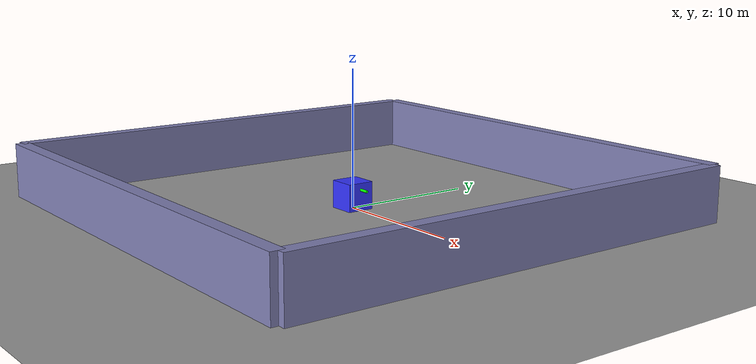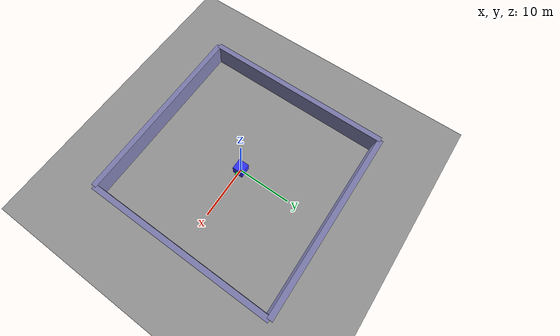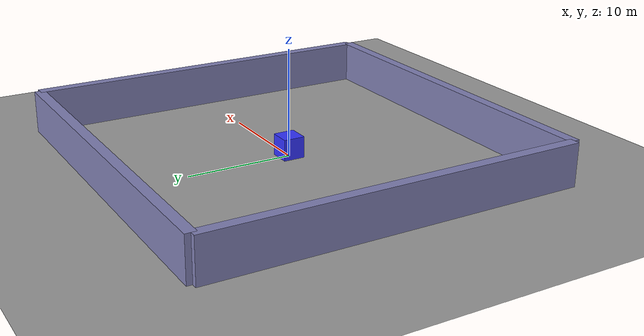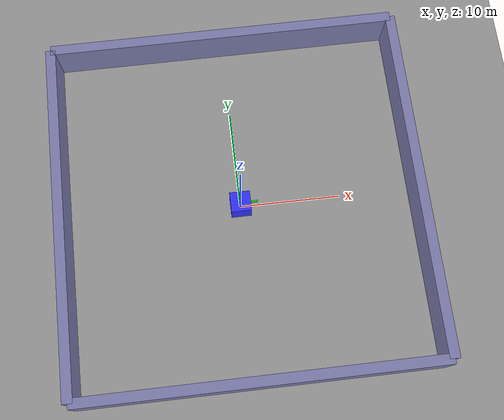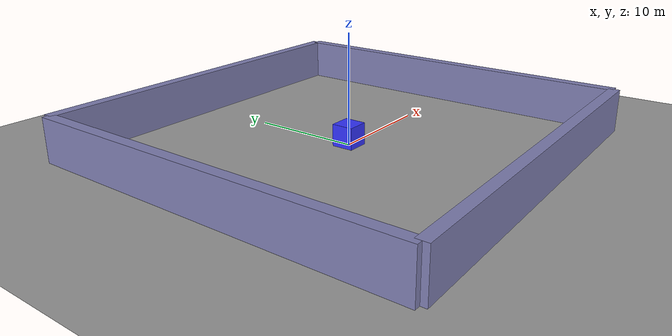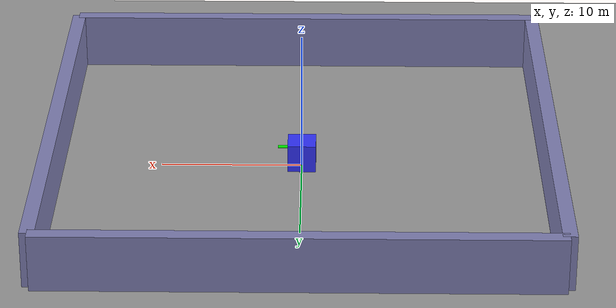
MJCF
<?xml version="1.0" encoding="UTF-8"?>
<mujoco model="chessboard_ground">
    <option gravity="0 0 -9.81" timestep="0.001" />

    <asset>
        <texture name="chessboard" type="2d" builtin="checker" rgb1="0.9 0.9 0.9" rgb2="0.3 0.3 0.3" width="100" height="100"/>
        <material name="chessboard_material" texture="chessboard" texrepeat="1 1" texuniform="true"/>
        <material name="sphere_material" rgba="1 0.2 0.2 1"/>
        <material name="cube_material" rgba="0.2 0.2 1 1"/>
        <material name="wall_material" rgba="0.5 0.5 0.7 1"/>
        <material name="nose_material" rgba="0 1 0 1"/>
    </asset>

    <worldbody>
        <geom name="ground" type="plane" size="50 50 0.1" pos="0 0 0" material="chessboard_material"/>

        <light name="light1" pos="0 0 500" dir="0 0 -1" diffuse="0.8 0.8 0.8" specular="0.1 0.1 0.1" castshadow="true"/>

        <body name="cube_body" pos="0 0 1">
            <geom name="cube" type="box" size="1 1 1" mass="1.0" material="cube_material" contype="1" conaffinity="1"/>
            <joint name="slider_x" type="slide" axis="1 0 0"/>
            <joint name="slider_y" type="slide" axis="0 1 0"/>
            <joint name="hinge_z" type="hinge" axis="0 0 1"/>
            <geom name="nose" type="cylinder" size="0.1 0.7" mass="0.1" pos="1 0 0.5" euler="0 90 0" material="nose_material"/>
        </body>

        <geom name="sphere" type="sphere" size="1" pos="0 0 1" material="sphere_material"/>
        <geom name="wall_north" type="box" size="17.5 0.5 2" pos="0 17.5 2" material="wall_material"/>
        <geom name="wall_south" type="box" size="17.5 0.5 2" pos="0 -17.5 2" material="wall_material"/>
        <geom name="wall_east" type="box" size="0.5 17.5 2" pos="17.5 0 2" material="wall_material"/>
        <geom name="wall_west" type="box" size="0.5 17.5 2" pos="-17.5 0 2" material="wall_material"/>
    </worldbody>

    <sensor>
        <framepos name="cube_pos" objtype="geom" objname="cube"/>
        <framepos name="sphere_pos" objtype="geom" objname="sphere"/>
    </sensor>

    <visual>
        <global offwidth="800" offheight="600"/>
        <quality shadowsize="2048"/>
        <headlight ambient="0.3 0.3 0.3" diffuse="0.7 0.7 0.7" specular="0.1 0.1 0.1"/>
        <map znear="0.01"/>
        <scale forcewidth="0.01" contactwidth="0.05" contactheight="0.05" jointwidth="0.05" framelength="0.2" framewidth="0.02"/>
        <rgba contactpoint="0 0.9 0 0.7" contactforce="0 0.5 0.3 0.1"/>
    </visual>
</mujoco>
